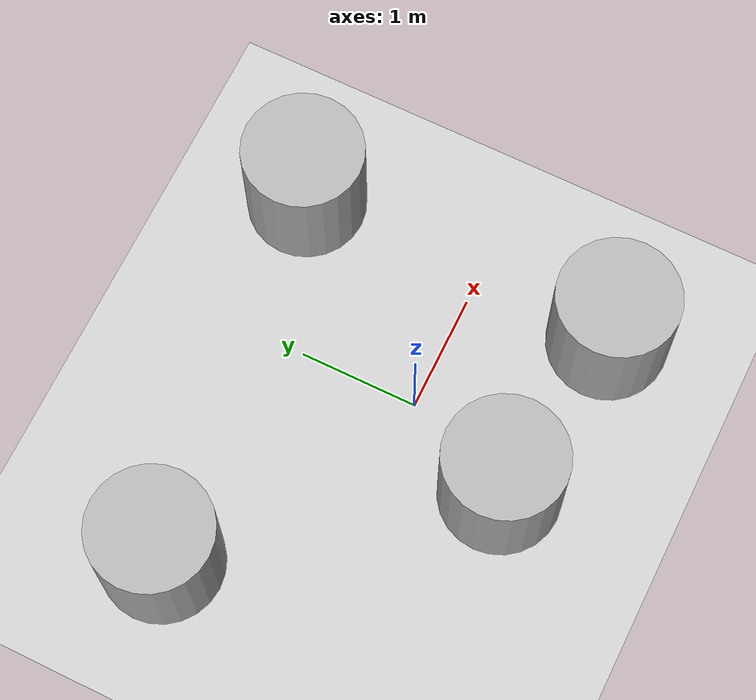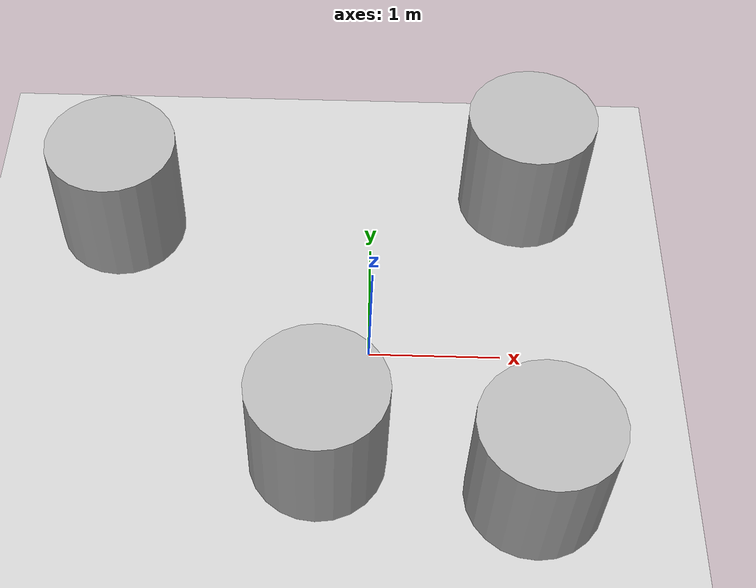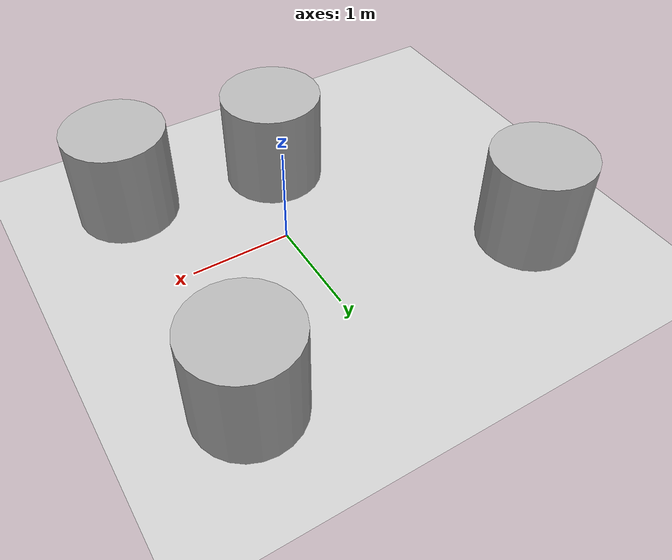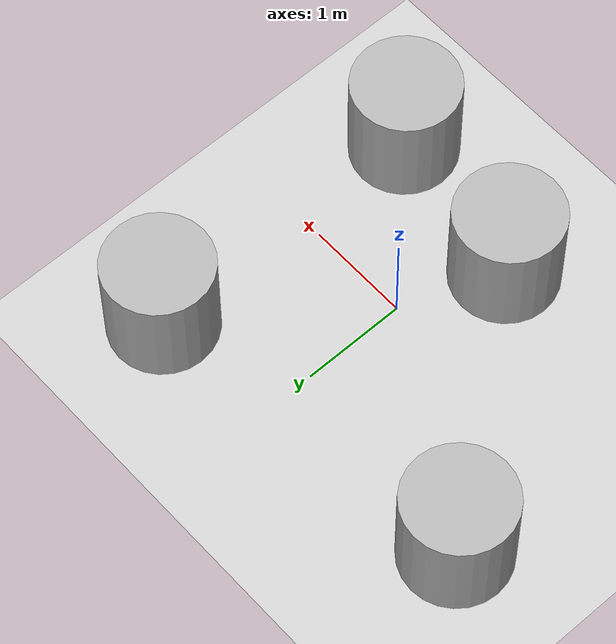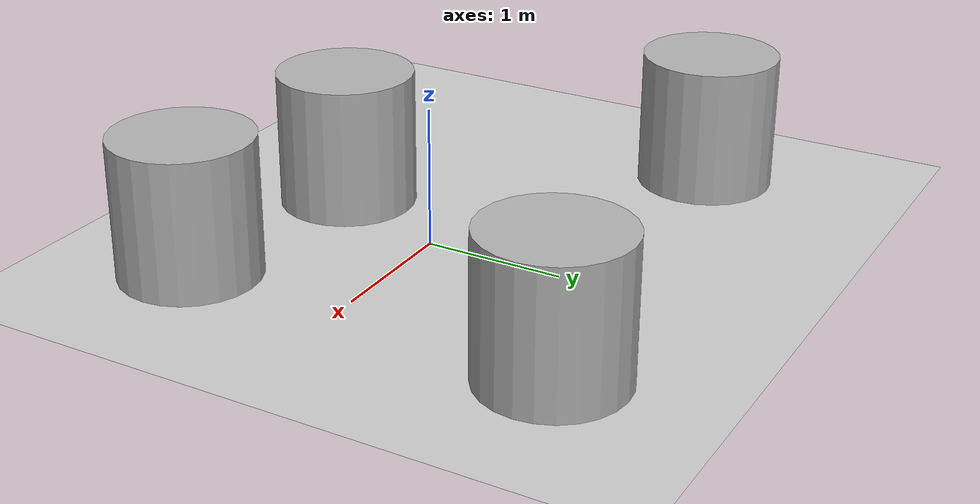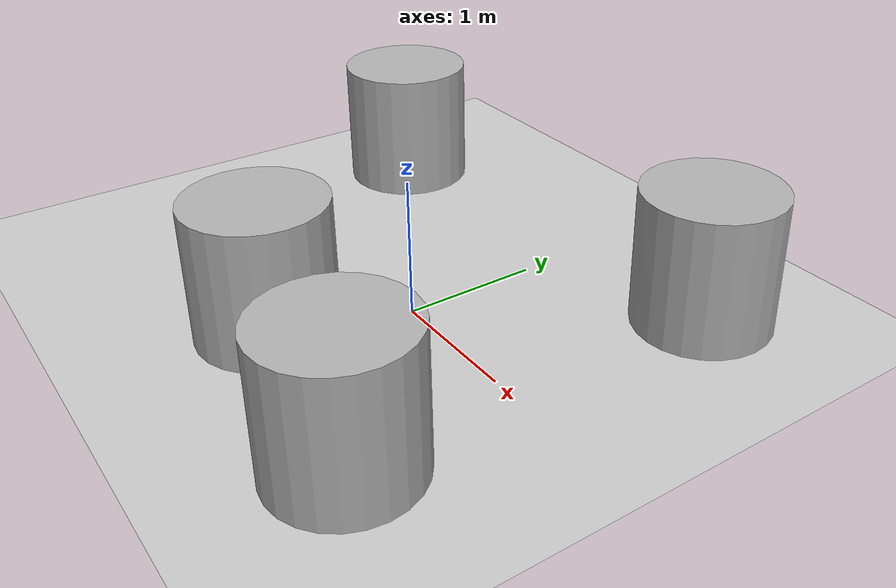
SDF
<sdf version='1.10'>
  <world name='empty'>
    <physics name='1ms' type='ignored'>
      <max_step_size>0.001</max_step_size>
      <real_time_factor>1</real_time_factor>
      <real_time_update_rate>1000</real_time_update_rate>
    </physics>
    <plugin name='gz::sim::systems::Physics' filename='gz-sim-physics-system'/>
    <plugin name='gz::sim::systems::UserCommands' filename='gz-sim-user-commands-system'/>
    <plugin name='gz::sim::systems::SceneBroadcaster' filename='gz-sim-scene-broadcaster-system'/>
    <plugin name='gz::sim::systems::Contact' filename='gz-sim-contact-system'/>
    <gravity>0 0 -9.8000000000000007</gravity>
    <magnetic_field>5.5644999999999998e-06 2.2875799999999999e-05 -4.2388400000000002e-05</magnetic_field>
    <atmosphere type='adiabatic'/>
    <scene>
      <ambient>0.400000006 0.400000006 0.400000006 1</ambient>
      <background>0.699999988 0.699999988 0.699999988 1</background>
      <shadows>true</shadows>
    </scene>
    <model name='ground_plane'>
      <static>true</static>
      <link name='link'>
        <collision name='collision'>
          <geometry>
            <plane>
              <normal>0 0 1</normal>
              <size>100 100</size>
            </plane>
          </geometry>
          <surface>
            <friction>
              <ode/>
            </friction>
            <bounce/>
            <contact/>
          </surface>
        </collision>
        <visual name='visual'>
          <geometry>
            <plane>
              <normal>0 0 1</normal>
              <size>100 100</size>
            </plane>
          </geometry>
          <material>
            <ambient>0.800000012 0.800000012 0.800000012 1</ambient>
            <diffuse>0.800000012 0.800000012 0.800000012 1</diffuse>
            <specular>0.800000012 0.800000012 0.800000012 1</specular>
          </material>
        </visual>
        <pose>0 0 0 0 0 0</pose>
        <inertial>
          <pose>0 0 0 0 0 0</pose>
          <mass>1</mass>
          <inertia>
            <ixx>1</ixx>
            <ixy>0</ixy>
            <ixz>0</ixz>
            <iyy>1</iyy>
            <iyz>0</iyz>
            <izz>1</izz>
          </inertia>
        </inertial>
        <enable_wind>false</enable_wind>
      </link>
      <pose>0 0 0 0 0 0</pose>
      <self_collide>false</self_collide>
    </model>
    <model name='cylinder'>
      <pose>1.179468716446455 -1.1698805413804285 0.49999942638036005 1.4042248314820923e-20 2.5016707403408621e-19 -1.9129261906193749e-20</pose>
      <link name='cylinder_link'>
        <inertial>
          <inertia>
            <ixx>0.14580000000000001</ixx>
            <ixy>0</ixy>
            <ixz>0</ixz>
            <iyy>0.14580000000000001</iyy>
            <iyz>0</iyz>
            <izz>0.125</izz>
          </inertia>
          <mass>1</mass>
          <pose>0 0 0 0 0 0</pose>
        </inertial>
        <collision name='cylinder_collision'>
          <geometry>
            <cylinder>
              <radius>0.5</radius>
              <length>1</length>
            </cylinder>
          </geometry>
          <surface>
            <friction>
              <ode/>
            </friction>
            <bounce/>
            <contact/>
          </surface>
        </collision>
        <visual name='cylinder_visual'>
          <geometry>
            <cylinder>
              <radius>0.5</radius>
              <length>1</length>
            </cylinder>
          </geometry>
          <material>
            <ambient>0.300000012 0.300000012 0.300000012 1</ambient>
            <diffuse>0.699999988 0.699999988 0.699999988 1</diffuse>
            <specular>1 1 1 1</specular>
          </material>
        </visual>
        <pose>0 0 0 0 0 0</pose>
        <enable_wind>false</enable_wind>
      </link>
      <static>false</static>
      <self_collide>false</self_collide>
    </model>
    <model name='cylinder_0'>
      <pose>-0.364858096868105 -0.9260221938340969 0.49999942638036005 3.1172247739768627e-19 -2.189145362707732e-19 -4.800237201751141e-21</pose>
      <link name='cylinder_link'>
        <inertial>
          <inertia>
            <ixx>0.14580000000000001</ixx>
            <ixy>0</ixy>
            <ixz>0</ixz>
            <iyy>0.14580000000000001</iyy>
            <iyz>0</iyz>
            <izz>0.125</izz>
          </inertia>
          <mass>1</mass>
          <pose>0 0 0 0 0 0</pose>
        </inertial>
        <collision name='cylinder_collision'>
          <geometry>
            <cylinder>
              <radius>0.5</radius>
              <length>1</length>
            </cylinder>
          </geometry>
          <surface>
            <friction>
              <ode/>
            </friction>
            <bounce/>
            <contact/>
          </surface>
        </collision>
        <visual name='cylinder_visual'>
          <geometry>
            <cylinder>
              <radius>0.5</radius>
              <length>1</length>
            </cylinder>
          </geometry>
          <material>
            <ambient>0.300000012 0.300000012 0.300000012 1</ambient>
            <diffuse>0.699999988 0.699999988 0.699999988 1</diffuse>
            <specular>1 1 1 1</specular>
          </material>
        </visual>
        <pose>0 0 0 0 0 0</pose>
        <enable_wind>false</enable_wind>
      </link>
      <static>false</static>
      <self_collide>false</self_collide>
    </model>
    <model name='cylinder_1'>
      <pose>-2.0210519275466146 1.2076660666221866 0.49999942638036005 -2.1596453007562587e-19 -5.6106607400970902e-20 -3.4106980555788505e-21</pose>
      <link name='cylinder_link'>
        <inertial>
          <inertia>
            <ixx>0.14580000000000001</ixx>
            <ixy>0</ixy>
            <ixz>0</ixz>
            <iyy>0.14580000000000001</iyy>
            <iyz>0</iyz>
            <izz>0.125</izz>
          </inertia>
          <mass>1</mass>
          <pose>0 0 0 0 0 0</pose>
        </inertial>
        <collision name='cylinder_collision'>
          <geometry>
            <cylinder>
              <radius>0.5</radius>
              <length>1</length>
            </cylinder>
          </geometry>
          <surface>
            <friction>
              <ode/>
            </friction>
            <bounce/>
            <contact/>
          </surface>
        </collision>
        <visual name='cylinder_visual'>
          <geometry>
            <cylinder>
              <radius>0.5</radius>
              <length>1</length>
            </cylinder>
          </geometry>
          <material>
            <ambient>0.300000012 0.300000012 0.300000012 1</ambient>
            <diffuse>0.699999988 0.699999988 0.699999988 1</diffuse>
            <specular>1 1 1 1</specular>
          </material>
        </visual>
        <pose>0 0 0 0 0 0</pose>
        <enable_wind>false</enable_wind>
      </link>
      <static>false</static>
      <self_collide>false</self_collide>
    </model>
    <model name='cylinder_2'>
      <pose>1.2283230621455468 1.5853886064686593 0.49999942638036005 -5.9739582084251819e-20 3.041689346974369e-19 1.2879865144154958e-20</pose>
      <link name='cylinder_link'>
        <inertial>
          <inertia>
            <ixx>0.14580000000000001</ixx>
            <ixy>0</ixy>
            <ixz>0</ixz>
            <iyy>0.14580000000000001</iyy>
            <iyz>0</iyz>
            <izz>0.125</izz>
          </inertia>
          <mass>1</mass>
          <pose>0 0 0 0 0 0</pose>
        </inertial>
        <collision name='cylinder_collision'>
          <geometry>
            <cylinder>
              <radius>0.5</radius>
              <length>1</length>
            </cylinder>
          </geometry>
          <surface>
            <friction>
              <ode/>
            </friction>
            <bounce/>
            <contact/>
          </surface>
        </collision>
        <visual name='cylinder_visual'>
          <geometry>
            <cylinder>
              <radius>0.5</radius>
              <length>1</length>
            </cylinder>
          </geometry>
          <material>
            <ambient>0.300000012 0.300000012 0.300000012 1</ambient>
            <diffuse>0.699999988 0.699999988 0.699999988 1</diffuse>
            <specular>1 1 1 1</specular>
          </material>
        </visual>
        <pose>0 0 0 0 0 0</pose>
        <enable_wind>false</enable_wind>
      </link>
      <static>false</static>
      <self_collide>false</self_collide>
    </model>
    <light name='sun' type='directional'>
      <pose>0 0 10 0 0 0</pose>
      <cast_shadows>true</cast_shadows>
      <intensity>1</intensity>
      <direction>-0.5 0.10000000000000001 -0.90000000000000002</direction>
      <diffuse>0.800000012 0.800000012 0.800000012 1</diffuse>
      <specular>0.200000003 0.200000003 0.200000003 1</specular>
      <attenuation>
        <range>1000</range>
        <linear>0.01</linear>
        <constant>0.90000000000000002</constant>
        <quadratic>0.001</quadratic>
      </attenuation>
      <spot>
        <inner_angle>0</inner_angle>
        <outer_angle>0</outer_angle>
        <falloff>0</falloff>
      </spot>
    </light>
  </world>
</sdf>
